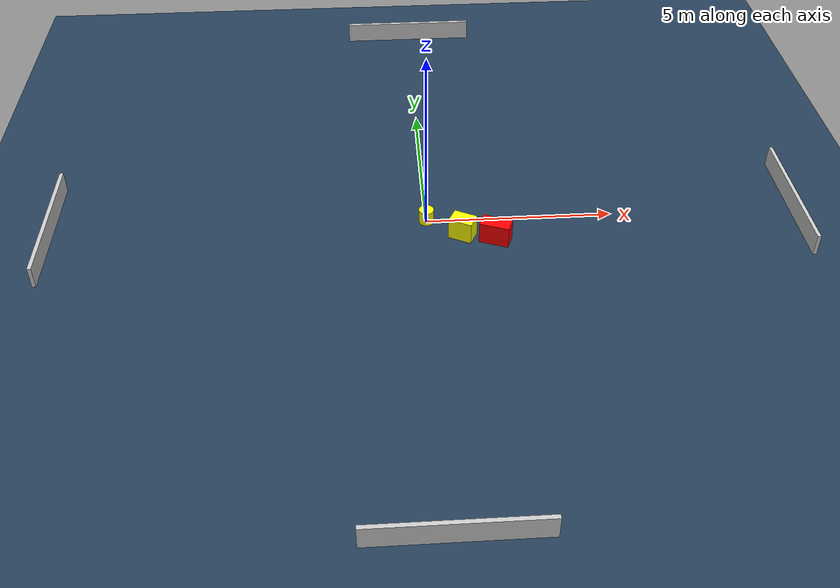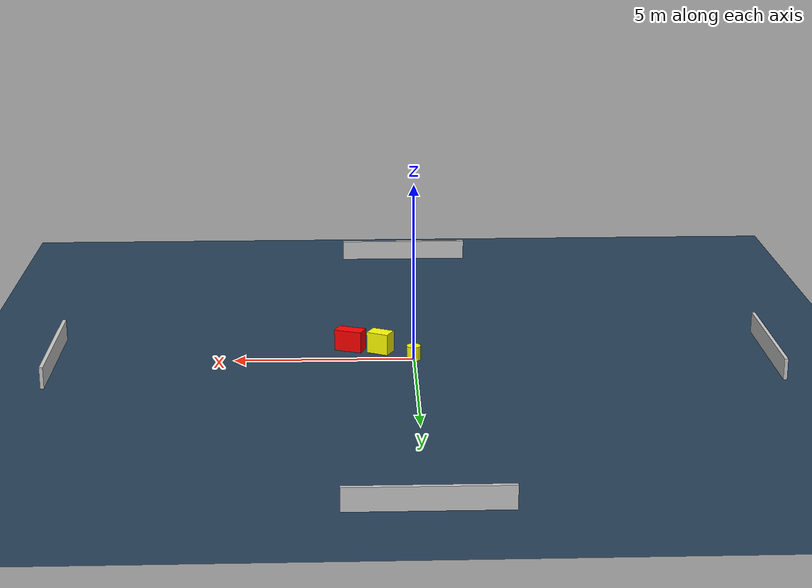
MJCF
<?xml version="1.0" ?>
<mujoco model="generated_environment">
  <option timestep="0.01" integrator="RK4" cone="elliptic"/>
  <default>
    <geom density="1"/>
  </default>
  <asset>
    <texture builtin="gradient" height="3072" name="skybox" rgb1="0.3 0.5 0.7" rgb2="0 0 0" type="skybox" width="512"/>
    <texture builtin="checker" height="300" name="groundplane" rgb1="0.2 0.3 0.4" rgb2="0.1 0.2 0.3" type="2d" width="300"/>
    <material name="groundplane" reflectance="0.2" texrepeat="5 5" texture="groundplane"/>
  </asset>
  <worldbody>
    <light dir="0 0 -1" directional="true" pos="0 0 1.5"/>
    <geom condim="3" friction="0.5 0.005 0.001" material="groundplane" name="floor" pos="0 0 0" size="0 0 0.05" type="plane"/>
    <body name="walls">
      <geom name="wall_1" condim="4" pos="-10.0 0.0 0.3" rgba="0.800000011920929 0.800000011920929 0.800000011920929 1.0" size="0.05 2.0 0.3" type="box"/>
      <geom name="wall_2" condim="4" pos="10.0 0.0 0.3" rgba="0.800000011920929 0.800000011920929 0.800000011920929 1.0" size="0.05 2.0 0.3" type="box"/>
      <geom name="wall_3" condim="4" pos="0.0 -10.0 0.3" rgba="0.800000011920929 0.800000011920929 0.800000011920929 1.0" size="2.0 0.05 0.3" type="box"/>
      <geom name="wall_4" condim="4" pos="0.0 10.0 0.3" rgba="0.800000011920929 0.800000011920929 0.800000011920929 1.0" size="2.0 0.05 0.3" type="box"/>
    </body>
    <body name="robot">
      <joint name="joint_x" type="slide" pos="0 0 0" axis="1 0 0"/>
      <joint name="joint_y" type="slide" pos="0 0 0" axis="0 1 0"/>
      <geom name="robot" type="cylinder" pos="0.0 0.0 0.2" size="0.2 0.2 0.0" mass="5.0" friction="1.0 0.005 0.0001" condim="4" rgba="1.0 1.0 0.0 1.0"/>
    </body>
    <body name="obstacle_1_movable">
      <geom name="obstacle_1_movable" condim="4" pos="0.9215764270210725 -0.6601536731714066 0.3" euler="0 0 243.01210882091465" friction="0.0 0.005 0.001" rgba="1.0 1.0 0.0 1.0" size="0.22001067045009093 0.3185160951545316 0.3" type="box" mass="0.1"/>
      <joint type="free"/>
    </body>
    <body name="obstacle_2_static">
      <geom name="obstacle_2_static" condim="4" pos="1.7720032713984202 -0.8904434397459429 0.3" euler="0 0 339.0836362196198" friction="0.0 0.005 0.001" rgba="1.0 0.0 0.0 1.0" size="0.39823199304083023 0.2065066752855732 0.3" type="box"/>
    </body>
  </worldbody>
  <actuator>
    <motor name="actuator_x" joint="joint_x" gear="1" ctrlrange="-1 1"/>
    <motor name="actuator_y" joint="joint_y" gear="1" ctrlrange="-1 1"/>
  </actuator>
</mujoco>
